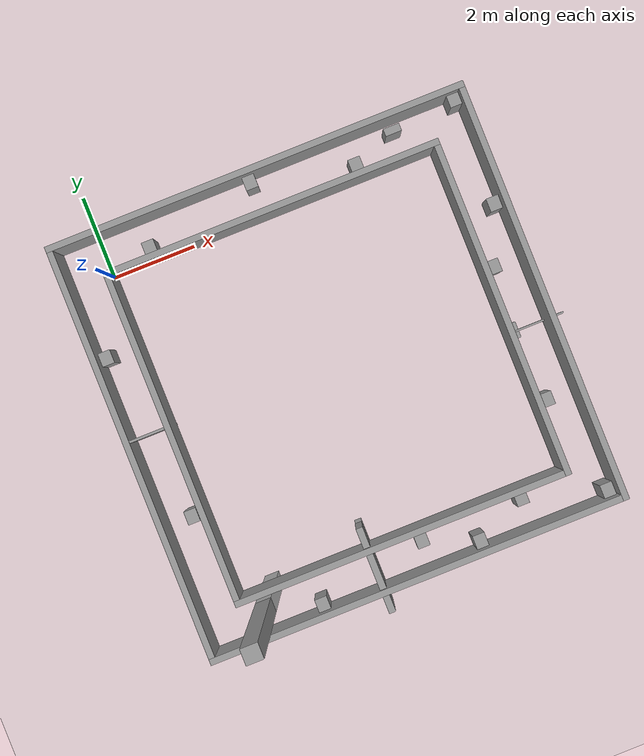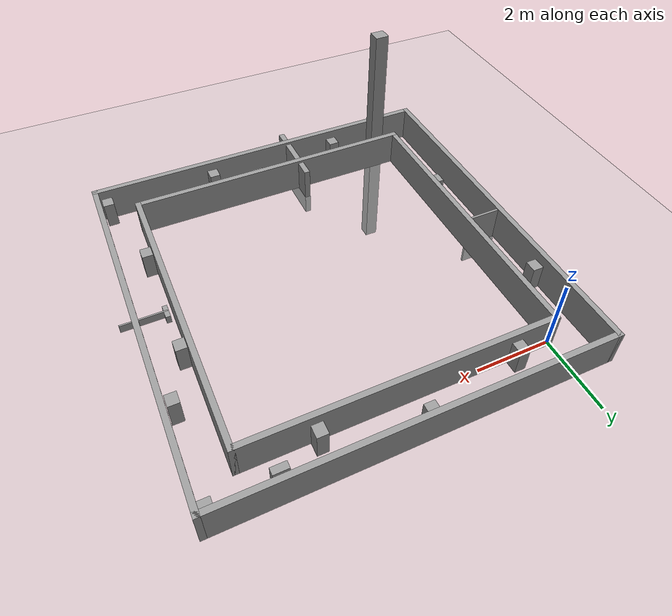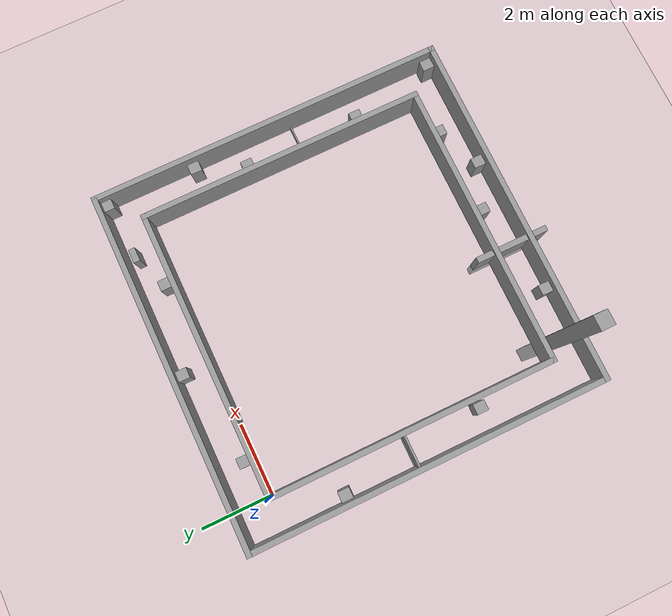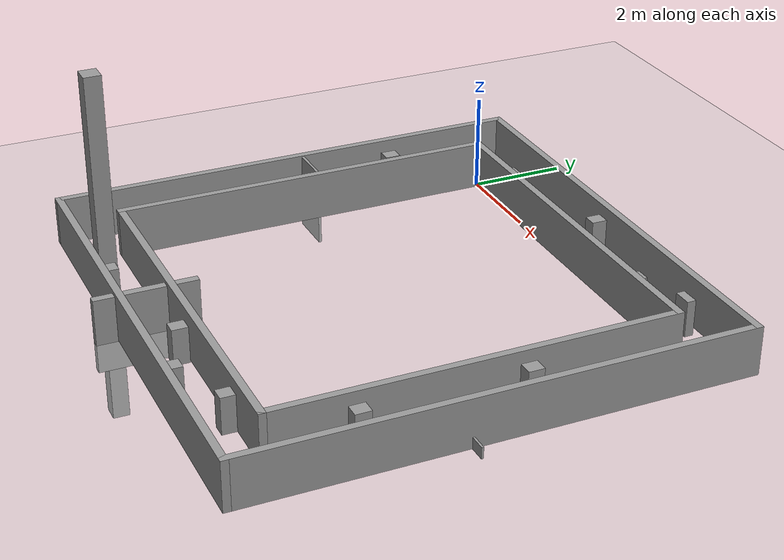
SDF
<sdf version="1.7">
 <world name="default">
  <light name="sun" type="directional">
   <pose>0 0 10 0 -0 0</pose>
   <diffuse>0.8 0.8 0.8 1</diffuse>
   <specular>0.2 0.2 0.2 1</specular>
   <attenuation>
    <range>1000</range>
    <constant>0.9</constant>
    <linear>0.01</linear>
    <quadratic>0.001</quadratic>
   </attenuation>
   <direction>-0.5 0.1 -0.9</direction>
   <spot><inner_angle>0</inner_angle><outer_angle>0</outer_angle><falloff>0</falloff></spot>
  </light>
  <model name="ground_plane">
   <static>1</static>
   <link name="link">
    <collision name="collision">
     <geometry><plane><normal>0 0 1</normal><size>100 100</size></plane></geometry>
     <surface>
      <contact><collide_bitmask>65535</collide_bitmask></contact>
      <friction><ode><mu>100</mu><mu2>50</mu2></ode></friction>
     </surface>
    </collision>
    <visual name="visual">
     <cast_shadows>0</cast_shadows>
     <geometry><plane><normal>0 0 1</normal><size>100 100</size></plane></geometry>
     <material>
      <script><uri>file://media/materials/scripts/gazebo.material</uri><name>Gazebo/Grey</name></script>
     </material>
    </visual>
   </link>
  </model>
  <gravity>0 0 -9.8</gravity>
  <magnetic_field>6e-06 2.3e-05 -4.2e-05</magnetic_field>
  <atmosphere type="adiabatic"/>
  <physics type="ode">
   <max_step_size>0.001</max_step_size>
   <real_time_factor>1</real_time_factor>
   <real_time_update_rate>1000</real_time_update_rate>
  </physics>
  <scene><ambient>0.4 0.4 0.4 1</ambient><background>0.7 0.7 0.7 1</background><shadows>1</shadows></scene>
  <spherical_coordinates>
   <surface_model>EARTH_WGS84</surface_model>
   <latitude_deg>0</latitude_deg>
   <longitude_deg>0</longitude_deg>
   <elevation>0</elevation>
   <heading_deg>0</heading_deg>
  </spherical_coordinates>
  <model name="maze_0">
   <pose>4 -4 0 0 -0 0</pose>
   <link name="Wall_1">
    <collision name="Wall_1_Collision">
     <geometry><box><size>10.15 0.15 1</size></box></geometry>
     <pose>0 0 0.5 0 -0 0</pose>
    </collision>
    <visual name="Wall_1_Visual">
     <pose>0 0 0.5 0 -0 0</pose>
     <geometry><box><size>10.15 0.15 1</size></box></geometry>
     <material>
      <script><uri>file://media/materials/scripts/gazebo.material</uri><name>Gazebo/Grey</name></script>
      <ambient>1 1 1 1</ambient>
     </material>
     <meta><layer>0</layer></meta>
    </visual>
    <pose>-0 5 0 0 -0 0</pose>
   </link>
   <link name="Wall_2">
    <collision name="Wall_2_Collision">
     <geometry><box><size>10.15 0.15 1</size></box></geometry>
     <pose>0 0 0.5 0 -0 0</pose>
    </collision>
    <visual name="Wall_2_Visual">
     <pose>0 0 0.5 0 -0 0</pose>
     <geometry><box><size>10.15 0.15 1</size></box></geometry>
     <material>
      <script><uri>file://media/materials/scripts/gazebo.material</uri><name>Gazebo/Grey</name></script>
      <ambient>1 1 1 1</ambient>
     </material>
     <meta><layer>0</layer></meta>
    </visual>
    <pose>5 0 0 0 -0 -1.5708</pose>
   </link>
   <link name="Wall_3">
    <collision name="Wall_3_Collision">
     <geometry><box><size>10.15 0.15 1</size></box></geometry>
     <pose>0 0 0.5 0 -0 0</pose>
    </collision>
    <visual name="Wall_3_Visual">
     <pose>0 0 0.5 0 -0 0</pose>
     <geometry><box><size>10.15 0.15 1</size></box></geometry>
     <material>
      <script><uri>file://media/materials/scripts/gazebo.material</uri><name>Gazebo/Grey</name></script>
      <ambient>1 1 1 1</ambient>
     </material>
     <meta><layer>0</layer></meta>
    </visual>
    <pose>-0 -5 0 0 -0 3.14159</pose>
   </link>
   <link name="Wall_4">
    <collision name="Wall_4_Collision">
     <geometry><box><size>10.15 0.15 1</size></box></geometry>
     <pose>0 0 0.5 0 -0 0</pose>
    </collision>
    <visual name="Wall_4_Visual">
     <pose>0 0 0.5 0 -0 0</pose>
     <geometry><box><size>10.15 0.15 1</size></box></geometry>
     <material>
      <script><uri>file://media/materials/scripts/gazebo.material</uri><name>Gazebo/Grey</name></script>
      <ambient>1 1 1 1</ambient>
     </material>
     <meta><layer>0</layer></meta>
    </visual>
    <pose>-5 0 0 0 -0 1.5708</pose>
   </link>
   <link name="Wall_6">
    <collision name="Wall_6_Collision">
     <geometry><box><size>8.15 0.15 1</size></box></geometry>
     <pose>0 0 0.5 0 -0 0</pose>
    </collision>
    <visual name="Wall_6_Visual">
     <pose>0 0 0.5 0 -0 0</pose>
     <geometry><box><size>8.15 0.15 1</size></box></geometry>
     <material>
      <script><uri>file://media/materials/scripts/gazebo.material</uri><name>Gazebo/Grey</name></script>
      <ambient>1 1 1 1</ambient>
     </material>
     <meta><layer>0</layer></meta>
    </visual>
    <pose>-0 4 0 0 -0 0</pose>
   </link>
   <link name="Wall_7">
    <collision name="Wall_7_Collision">
     <geometry><box><size>8.15 0.15 1</size></box></geometry>
     <pose>0 0 0.5 0 -0 0</pose>
    </collision>
    <visual name="Wall_7_Visual">
     <pose>0 0 0.5 0 -0 0</pose>
     <geometry><box><size>8.15 0.15 1</size></box></geometry>
     <material>
      <script><uri>file://media/materials/scripts/gazebo.material</uri><name>Gazebo/Grey</name></script>
      <ambient>1 1 1 1</ambient>
     </material>
     <meta><layer>0</layer></meta>
    </visual>
    <pose>4 0 0 0 -0 -1.5708</pose>
   </link>
   <link name="Wall_8">
    <collision name="Wall_8_Collision">
     <geometry><box><size>8.15 0.15 1</size></box></geometry>
     <pose>0 0 0.5 0 -0 0</pose>
    </collision>
    <visual name="Wall_8_Visual">
     <pose>0 0 0.5 0 -0 0</pose>
     <geometry><box><size>8.15 0.15 1</size></box></geometry>
     <material>
      <script><uri>file://media/materials/scripts/gazebo.material</uri><name>Gazebo/Grey</name></script>
      <ambient>1 1 1 1</ambient>
     </material>
     <meta><layer>0</layer></meta>
    </visual>
    <pose>-0 -4 0 0 -0 3.14159</pose>
   </link>
   <link name="Wall_9">
    <collision name="Wall_9_Collision">
     <geometry><box><size>8.15 0.15 1</size></box></geometry>
     <pose>0 0 0.5 0 -0 0</pose>
    </collision>
    <visual name="Wall_9_Visual">
     <pose>0 0 0.5 0 -0 0</pose>
     <geometry><box><size>8.15 0.15 1</size></box></geometry>
     <material>
      <script><uri>file://media/materials/scripts/gazebo.material</uri><name>Gazebo/Grey</name></script>
      <ambient>1 1 1 1</ambient>
     </material>
     <meta><layer>0</layer></meta>
    </visual>
    <pose>-4 0 0 0 -0 1.5708</pose>
   </link>
   <static>1</static>
  </model>
  <model name="unit_box_clone">
   <pose>6.16031 0.241755 0.371756 -4e-06 -2e-06 -2e-06</pose>
   <link name="link">
    <inertial>
     <mass>1</mass>
     <inertia>
      <ixx>0.166667</ixx>
      <ixy>0</ixy>
      <ixz>0</ixz>
      <iyy>0.166667</iyy>
      <iyz>0</iyz>
      <izz>0.166667</izz>
     </inertia>
    </inertial>
    <collision name="collision">
     <geometry><box><size>0.289995 0.321886 0.743514</size></box></geometry>
    </collision>
    <visual name="visual">
     <geometry><box><size>0.289995 0.321886 0.743514</size></box></geometry>
     <material>
      <script><name>Gazebo/Grey</name><uri>file://media/materials/scripts/gazebo.material</uri></script>
     </material>
    </visual>
   </link>
  </model>
  <model name="unit_box_clone_0">
   <pose>8.7876 0.801292 0.371756 -4e-06 -2e-06 -2e-06</pose>
   <link name="link">
    <inertial>
     <mass>1</mass>
     <inertia>
      <ixx>0.166667</ixx>
      <ixy>0</ixy>
      <ixz>0</ixz>
      <iyy>0.166667</iyy>
      <iyz>0</iyz>
      <izz>0.166667</izz>
     </inertia>
    </inertial>
    <collision name="collision">
     <geometry><box><size>0.289995 0.321886 0.743514</size></box></geometry>
    </collision>
    <visual name="visual">
     <geometry><box><size>0.289995 0.321886 0.743514</size></box></geometry>
     <material>
      <script><name>Gazebo/Grey</name><uri>file://media/materials/scripts/gazebo.material</uri></script>
     </material>
    </visual>
   </link>
  </model>
  <model name="unit_box_clone_1">
   <pose>8.75983 -1.74367 0.371756 -4e-06 -2e-06 -2e-06</pose>
   <link name="link">
    <inertial>
     <mass>1</mass>
     <inertia>
      <ixx>0.166667</ixx>
      <ixy>0</ixy>
      <ixz>0</ixz>
      <iyy>0.166667</iyy>
      <iyz>0</iyz>
      <izz>0.166667</izz>
     </inertia>
    </inertial>
    <collision name="collision">
     <geometry><box><size>0.289995 0.321886 0.743514</size></box></geometry>
    </collision>
    <visual name="visual">
     <geometry><box><size>0.289995 0.321886 0.743514</size></box></geometry>
     <material>
      <script><name>Gazebo/Grey</name><uri>file://media/materials/scripts/gazebo.material</uri></script>
     </material>
    </visual>
   </link>
  </model>
  <model name="unit_box_clone_2">
   <pose>8.21986 -3.07746 0.371756 -4e-06 -2e-06 -2e-06</pose>
   <link name="link">
    <inertial>
     <mass>1</mass>
     <inertia>
      <ixx>0.166667</ixx>
      <ixy>0</ixy>
      <ixz>0</ixz>
      <iyy>0.166667</iyy>
      <iyz>0</iyz>
      <izz>0.166667</izz>
     </inertia>
    </inertial>
    <collision name="collision">
     <geometry><box><size>0.289995 0.321886 0.743514</size></box></geometry>
    </collision>
    <visual name="visual">
     <geometry><box><size>0.289995 0.321886 0.743514</size></box></geometry>
     <material>
      <script><name>Gazebo/Grey</name><uri>file://media/materials/scripts/gazebo.material</uri></script>
     </material>
    </visual>
   </link>
  </model>
  <model name="unit_box_clone_3">
   <pose>8.2215 -6.32916 0.371756 -4e-06 -2e-06 -2e-06</pose>
   <link name="link">
    <inertial>
     <mass>1</mass>
     <inertia>
      <ixx>0.166667</ixx>
      <ixy>0</ixy>
      <ixz>0</ixz>
      <iyy>0.166667</iyy>
      <iyz>0</iyz>
      <izz>0.166667</izz>
     </inertia>
    </inertial>
    <collision name="collision">
     <geometry><box><size>0.289995 0.321886 0.743514</size></box></geometry>
    </collision>
    <visual name="visual">
     <geometry><box><size>0.289995 0.321886 0.743514</size></box></geometry>
     <material>
      <script><name>Gazebo/Grey</name><uri>file://media/materials/scripts/gazebo.material</uri></script>
     </material>
    </visual>
   </link>
  </model>
  <model name="unit_box_clone_4">
   <pose>8.74183 -8.75702 0.371756 -4e-06 -2e-06 -2e-06</pose>
   <link name="link">
    <inertial>
     <mass>1</mass>
     <inertia>
      <ixx>0.166667</ixx>
      <ixy>0</ixy>
      <ixz>0</ixz>
      <iyy>0.166667</iyy>
      <iyz>0</iyz>
      <izz>0.166667</izz>
     </inertia>
    </inertial>
    <collision name="collision">
     <geometry><box><size>0.289995 0.321886 0.743514</size></box></geometry>
    </collision>
    <visual name="visual">
     <geometry><box><size>0.289995 0.321886 0.743514</size></box></geometry>
     <material>
      <script><name>Gazebo/Grey</name><uri>file://media/materials/scripts/gazebo.material</uri></script>
     </material>
    </visual>
   </link>
  </model>
  <model name="unit_box_clone_5">
   <pose>6.84068 -8.20069 0.371756 -4e-06 -2e-06 -2e-06</pose>
   <link name="link">
    <inertial>
     <mass>1</mass>
     <inertia>
      <ixx>0.166667</ixx>
      <ixy>0</ixy>
      <ixz>0</ixz>
      <iyy>0.166667</iyy>
      <iyz>0</iyz>
      <izz>0.166667</izz>
     </inertia>
    </inertial>
    <collision name="collision">
     <geometry><box><size>0.289995 0.321886 0.743514</size></box></geometry>
    </collision>
    <visual name="visual">
     <geometry><box><size>0.289995 0.321886 0.743514</size></box></geometry>
     <material>
      <script><name>Gazebo/Grey</name><uri>file://media/materials/scripts/gazebo.material</uri></script>
     </material>
    </visual>
   </link>
  </model>
  <model name="unit_box_clone_6">
   <pose>5.62265 -8.76128 0.371756 -4e-06 -2e-06 -2e-06</pose>
   <link name="link">
    <inertial>
     <mass>1</mass>
     <inertia>
      <ixx>0.166667</ixx>
      <ixy>0</ixy>
      <ixz>0</ixz>
      <iyy>0.166667</iyy>
      <iyz>0</iyz>
      <izz>0.166667</izz>
     </inertia>
    </inertial>
    <collision name="collision">
     <geometry><box><size>0.289995 0.321886 0.743514</size></box></geometry>
    </collision>
    <visual name="visual">
     <geometry><box><size>0.289995 0.321886 0.743514</size></box></geometry>
     <material>
      <script><name>Gazebo/Grey</name><uri>file://media/materials/scripts/gazebo.material</uri></script>
     </material>
    </visual>
   </link>
  </model>
  <model name="unit_box_clone_7">
   <pose>4.38037 -8.25694 0.371756 -4e-06 -2e-06 -2e-06</pose>
   <link name="link">
    <inertial>
     <mass>1</mass>
     <inertia>
      <ixx>0.166667</ixx>
      <ixy>0</ixy>
      <ixz>0</ixz>
      <iyy>0.166667</iyy>
      <iyz>0</iyz>
      <izz>0.166667</izz>
     </inertia>
    </inertial>
    <collision name="collision">
     <geometry><box><size>0.289995 0.321886 0.743514</size></box></geometry>
    </collision>
    <visual name="visual">
     <geometry><box><size>0.289995 0.321886 0.743514</size></box></geometry>
     <material>
      <script><name>Gazebo/Grey</name><uri>file://media/materials/scripts/gazebo.material</uri></script>
     </material>
    </visual>
   </link>
  </model>
  <model name="unit_box_clone_8">
   <pose>1.75034 -8.77602 0.371756 -4e-06 -2e-06 -2e-06</pose>
   <link name="link">
    <inertial>
     <mass>1</mass>
     <inertia>
      <ixx>0.166667</ixx>
      <ixy>0</ixy>
      <ixz>0</ixz>
      <iyy>0.166667</iyy>
      <iyz>0</iyz>
      <izz>0.166667</izz>
     </inertia>
    </inertial>
    <collision name="collision">
     <geometry><box><size>0.289995 0.321886 0.743514</size></box></geometry>
    </collision>
    <visual name="visual">
     <geometry><box><size>0.289995 0.321886 0.743514</size></box></geometry>
     <material>
      <script><name>Gazebo/Grey</name><uri>file://media/materials/scripts/gazebo.material</uri></script>
     </material>
    </visual>
   </link>
  </model>
  <model name="unit_box_clone_10">
   <pose>-0.273973 -5.80897 0.371756 -4e-06 -2e-06 -2e-06</pose>
   <link name="link">
    <inertial>
     <mass>1</mass>
     <inertia>
      <ixx>0.166667</ixx>
      <ixy>0</ixy>
      <ixz>0</ixz>
      <iyy>0.166667</iyy>
      <iyz>0</iyz>
      <izz>0.166667</izz>
     </inertia>
    </inertial>
    <collision name="collision">
     <geometry><box><size>0.289995 0.321886 0.743514</size></box></geometry>
    </collision>
    <visual name="visual">
     <geometry><box><size>0.289995 0.321886 0.743514</size></box></geometry>
     <material>
      <script><name>Gazebo/Grey</name><uri>file://media/materials/scripts/gazebo.material</uri></script>
     </material>
    </visual>
   </link>
  </model>
  <model name="unit_box_clone_11">
   <pose>-0.752719 -1.743 0.371756 -4e-06 -2e-06 -2e-06</pose>
   <link name="link">
    <inertial>
     <mass>1</mass>
     <inertia>
      <ixx>0.166667</ixx>
      <ixy>0</ixy>
      <ixz>0</ixz>
      <iyy>0.166667</iyy>
      <iyz>0</iyz>
      <izz>0.166667</izz>
     </inertia>
    </inertial>
    <collision name="collision">
     <geometry><box><size>0.289995 0.321886 0.743514</size></box></geometry>
    </collision>
    <visual name="visual">
     <geometry><box><size>0.289995 0.321886 0.743514</size></box></geometry>
     <material>
      <script><name>Gazebo/Grey</name><uri>file://media/materials/scripts/gazebo.material</uri></script>
     </material>
    </visual>
   </link>
  </model>
  <model name="unit_box_clone_clone">
   <pose>3.77127 0.768779 0.371756 -3e-06 4e-06 4.6e-05</pose>
   <link name="link">
    <inertial>
     <mass>1</mass>
     <inertia>
      <ixx>0.166667</ixx>
      <ixy>0</ixy>
      <ixz>0</ixz>
      <iyy>0.166667</iyy>
      <iyz>0</iyz>
      <izz>0.166667</izz>
     </inertia>
    </inertial>
    <collision name="collision">
     <geometry><box><size>0.289995 0.321886 0.743514</size></box></geometry>
    </collision>
    <visual name="visual">
     <geometry><box><size>0.289995 0.321886 0.743514</size></box></geometry>
     <material>
      <script><name>Gazebo/Grey</name><uri>file://media/materials/scripts/gazebo.material</uri></script>
     </material>
    </visual>
   </link>
  </model>
  <model name="unit_box_clone_clone_0">
   <pose>1.09823 0.233235 0.371756 -3e-06 4e-06 4.6e-05</pose>
   <link name="link">
    <inertial>
     <mass>1</mass>
     <inertia>
      <ixx>0.166667</ixx>
      <ixy>0</ixy>
      <ixz>0</ixz>
      <iyy>0.166667</iyy>
      <iyz>0</iyz>
      <izz>0.166667</izz>
     </inertia>
    </inertial>
    <collision name="collision">
     <geometry><box><size>0.289995 0.321886 0.743514</size></box></geometry>
    </collision>
    <visual name="visual">
     <geometry><box><size>0.289995 0.321886 0.743514</size></box></geometry>
     <material>
      <script><name>Gazebo/Grey</name><uri>file://media/materials/scripts/gazebo.material</uri></script>
     </material>
    </visual>
   </link>
  </model>
  <model name="unit_box_clone_7_clone">
   <pose>3.16434 -8.467 0.161757 0 0 -2e-06</pose>
   <link name="link">
    <inertial>
     <mass>1</mass>
     <inertia>
      <ixx>0.166667</ixx>
      <ixy>0</ixy>
      <ixz>0</ixz>
      <iyy>0.166667</iyy>
      <iyz>0</iyz>
      <izz>0.166667</izz>
     </inertia>
    </inertial>
    <collision name="collision"><geometry><box><size>0.162235 2.05612 1.52985</size></box></geometry></collision>
    <visual name="visual">
     <geometry><box><size>0.162235 2.05612 1.52985</size></box></geometry>
     <material>
      <script><name>Gazebo/Grey</name><uri>file://media/materials/scripts/gazebo.material</uri></script>
     </material>
    </visual>
   </link>
  </model>
  <model name="unit_box_clone_7_clone_clone">
   <pose>0.413293 -8.49385 0.371756 2e-06 -4e-06 0.000678</pose>
   <link name="link">
    <inertial>
     <mass>1</mass>
     <inertia>
      <ixx>0.166667</ixx>
      <ixy>0</ixy>
      <ixz>0</ixz>
      <iyy>0.166667</iyy>
      <iyz>0</iyz>
      <izz>0.166667</izz>
     </inertia>
    </inertial>
    <collision name="collision"><geometry><box><size>0.387717 0.360318 7.61392</size></box></geometry></collision>
    <visual name="visual">
     <geometry><box><size>0.387717 0.360318 7.61392</size></box></geometry>
     <material>
      <script><name>Gazebo/Grey</name><uri>file://media/materials/scripts/gazebo.material</uri></script>
     </material>
    </visual>
   </link>
  </model>
  <model name="unit_box_clone_7_clone_clone_0">
   <pose>-0.492033 -3.71796 0.1705 0 4e-06 0.000812</pose>
   <link name="link">
    <inertial>
     <mass>1</mass>
     <inertia>
      <ixx>0.166667</ixx>
      <ixy>0</ixy>
      <ixz>0</ixz>
      <iyy>0.166667</iyy>
      <iyz>0</iyz>
      <izz>0.166667</izz>
     </inertia>
    </inertial>
    <collision name="collision">
     <geometry><box><size>0.948505 0.0586055 1.62412</size></box></geometry>
    </collision>
    <visual name="visual">
     <geometry><box><size>0.948505 0.0586055 1.62412</size></box></geometry>
     <material>
      <script><name>Gazebo/Grey</name><uri>file://media/materials/scripts/gazebo.material</uri></script>
     </material>
    </visual>
   </link>
  </model>
  <model name="unit_box_clone_7_clone_clone_1">
   <pose>7.22316 0.67183 0.371756 2e-06 4e-06 0.000789</pose>
   <link name="link">
    <inertial>
     <mass>1</mass>
     <inertia>
      <ixx>0.166667</ixx>
      <ixy>0</ixy>
      <ixz>0</ixz>
      <iyy>0.166667</iyy>
      <iyz>0</iyz>
      <izz>0.166667</izz>
     </inertia>
    </inertial>
    <collision name="collision">
     <geometry><box><size>0.387717 0.180584 0.743514</size></box></geometry>
    </collision>
    <visual name="visual">
     <geometry><box><size>0.387717 0.180584 0.743514</size></box></geometry>
     <material>
      <script><name>Gazebo/Grey</name><uri>file://media/materials/scripts/gazebo.material</uri></script>
     </material>
    </visual>
   </link>
  </model>
  <model name="unit_box_clone_7_clone_clone_clone">
   <pose>8.79344 -4.63826 0.116172 -2e-06 -0 0.000715</pose>
   <link name="link">
    <inertial>
     <mass>1</mass>
     <inertia>
      <ixx>0.166667</ixx>
      <ixy>0</ixy>
      <ixz>0</ixz>
      <iyy>0.166667</iyy>
      <iyz>0</iyz>
      <izz>0.166667</izz>
     </inertia>
    </inertial>
    <collision name="collision"><geometry><box><size>1.2258 0.0432273 0.232343</size></box></geometry></collision>
    <visual name="visual">
     <geometry><box><size>1.2258 0.0432273 0.232343</size></box></geometry>
     <material>
      <script><name>Gazebo/Grey</name><uri>file://media/materials/scripts/gazebo.material</uri></script>
     </material>
    </visual>
   </link>
  </model>
  <model name="unit_box_clone_7_clone_clone_clone_clone">
   <pose>8.2217 -4.61655 0.116172 -1e-06 -0 -1.57008</pose>
   <link name="link">
    <inertial>
     <mass>1</mass>
     <inertia>
      <ixx>0.166667</ixx>
      <ixy>0</ixy>
      <ixz>0</ixz>
      <iyy>0.166667</iyy>
      <iyz>0</iyz>
      <izz>0.166667</izz>
     </inertia>
    </inertial>
    <collision name="collision">
     <geometry><box><size>0.387717 0.127842 0.232343</size></box></geometry>
    </collision>
    <visual name="visual">
     <geometry><box><size>0.387717 0.127842 0.232343</size></box></geometry>
     <material>
      <script><name>Gazebo/Grey</name><uri>file://media/materials/scripts/gazebo.material</uri></script>
     </material>
    </visual>
   </link>
  </model>
 </world>
</sdf>
